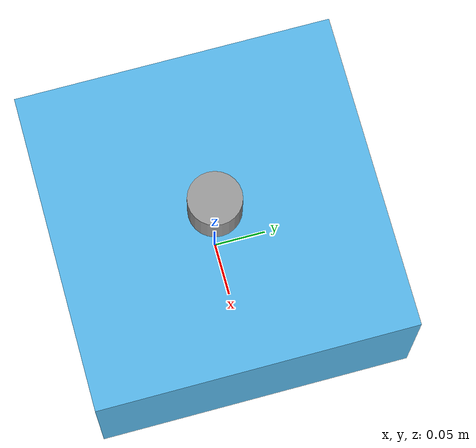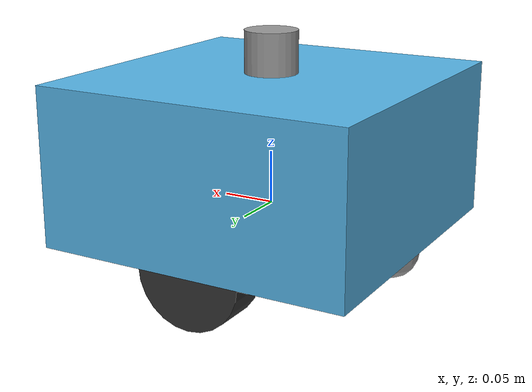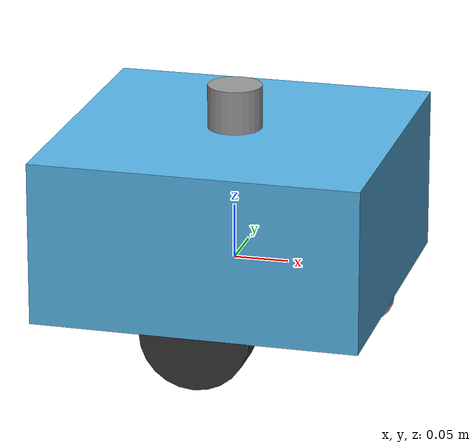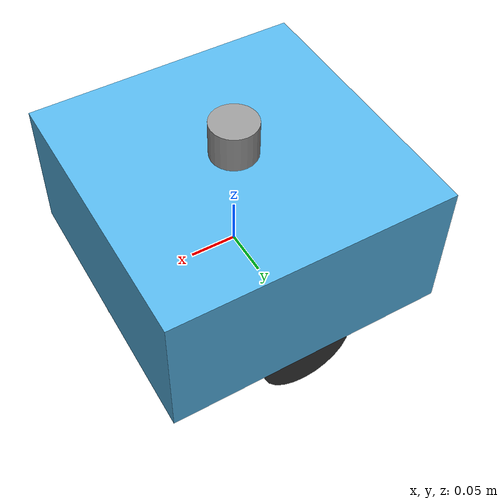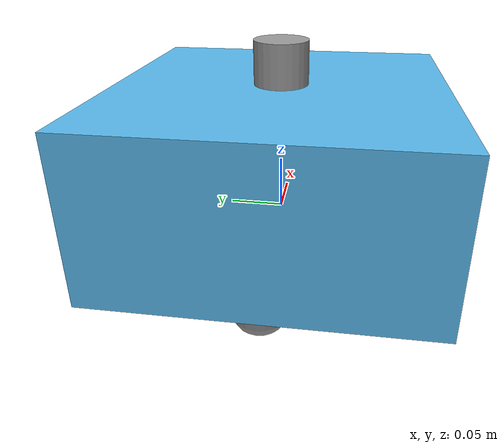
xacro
<?xml version="1.0"?>
<robot name="swarm_robot" xmlns:xacro="http://www.ros.org/wiki/xacro">

  <!-- ═══════════════════════════════════════════════════════════
       Parameters
       ═══════════════════════════════════════════════════════════ -->
  <xacro:arg name="robot_name"       default="robot_0"/>
  <!-- ros_namespace is robot_0, robot_1, ... -->
  <xacro:arg name="ros_namespace"    default="robot_0"/>
  <!-- Absolute path to the per-robot controllers YAML, written by the launch file -->
  <xacro:arg name="controllers_yaml" default=""/>

  <xacro:property name="rname"     value="$(arg robot_name)"/>
  <xacro:property name="ros_ns"    value="$(arg ros_namespace)"/>
  <xacro:property name="ctrl_yaml" value="$(arg controllers_yaml)"/>

  <!-- ═══════════════════════════════════════════════════════════
       Geometry constants
       ═══════════════════════════════════════════════════════════ -->
  <xacro:property name="body_x"        value="0.30"/>
  <xacro:property name="body_y"        value="0.30"/>
  <xacro:property name="body_z"        value="0.15"/>
  <xacro:property name="wheel_radius"  value="0.05"/>
  <xacro:property name="wheel_width"   value="0.04"/>
  <xacro:property name="wheel_sep"     value="0.25"/>
  <xacro:property name="caster_radius" value="0.025"/>

  <!-- Robot base rides at wheel_radius above the ground plane -->
  <xacro:property name="base_z_offset" value="${wheel_radius}"/>

  <!-- ═══════════════════════════════════════════════════════════
       LINKS
       ═══════════════════════════════════════════════════════════ -->

  <!-- Zero-inertia ground-plane anchor -->
  <link name="${rname}/base_footprint"/>

  <!-- Robot body -->
<link name="${rname}/base_link">
  <visual>
    <origin xyz="0 0 0" rpy="0 0 0"/>
    <geometry>
      <box size="${body_x} ${body_y} ${body_z}"/>
    </geometry>
  </visual>

  <inertial>
    <mass value="5.0"/>
    <inertia
      ixx="${5.0/12.0*(body_y*body_y + body_z*body_z)}"
      ixy="0.0" ixz="0.0"
      iyy="${5.0/12.0*(body_x*body_x + body_z*body_z)}"
      iyz="0.0"
      izz="${5.0/12.0*(body_x*body_x + body_y*body_y)}"/>
  </inertial>
</link>

  <!-- Left drive wheel -->
  <link name="${rname}/left_wheel">
    <visual>
      <origin xyz="0 0 0" rpy="${pi/2} 0 0"/>
      <geometry>
        <cylinder radius="${wheel_radius}" length="${wheel_width}"/>
      </geometry>
      <material name="dark_grey">
        <color rgba="0.2 0.2 0.2 1.0"/>
      </material>
    </visual>
    <collision>
      <origin xyz="0 0 0" rpy="${pi/2} 0 0"/>
      <geometry>
        <cylinder radius="${wheel_radius}" length="${wheel_width}"/>
      </geometry>
    </collision>
    <inertial>
      <mass value="0.5"/>
      <inertia
        ixx="${0.5/12.0*(3.0*wheel_radius*wheel_radius + wheel_width*wheel_width)}"
        ixy="0.0" ixz="0.0"
        iyy="${0.5/12.0*(3.0*wheel_radius*wheel_radius + wheel_width*wheel_width)}"
        iyz="0.0"
        izz="${0.5/2.0*wheel_radius*wheel_radius}"/>
    </inertial>
  </link>

  <!-- Right drive wheel -->
  <link name="${rname}/right_wheel">
    <visual>
      <origin xyz="0 0 0" rpy="${pi/2} 0 0"/>
      <geometry>
        <cylinder radius="${wheel_radius}" length="${wheel_width}"/>
      </geometry>
      <material name="dark_grey">
        <color rgba="0.2 0.2 0.2 1.0"/>
      </material>
    </visual>
    <collision>
      <origin xyz="0 0 0" rpy="${pi/2} 0 0"/>
      <geometry>
        <cylinder radius="${wheel_radius}" length="${wheel_width}"/>
      </geometry>
    </collision>
    <inertial>
      <mass value="0.5"/>
      <inertia
        ixx="${0.5/12.0*(3.0*wheel_radius*wheel_radius + wheel_width*wheel_width)}"
        ixy="0.0" ixz="0.0"
        iyy="${0.5/12.0*(3.0*wheel_radius*wheel_radius + wheel_width*wheel_width)}"
        iyz="0.0"
        izz="${0.5/2.0*wheel_radius*wheel_radius}"/>
    </inertial>
  </link>

  <!-- Passive caster (front, sphere, zero friction) -->
  <link name="${rname}/caster_wheel_one">
    <visual>
      <origin xyz="0 0 0" rpy="0 0 0"/>
      <geometry>
        <sphere radius="${caster_radius}"/>
      </geometry>
      <material name="light_grey">
        <color rgba="0.6 0.6 0.6 1.0"/>
      </material>
    </visual>
    <collision>
      <origin xyz="0 0 0" rpy="0 0 0"/>
      <geometry>
        <sphere radius="${caster_radius}"/>
      </geometry>
    </collision>
    <inertial>
      <mass value="0.1"/>
      <inertia
        ixx="${2.0/5.0*0.1*caster_radius*caster_radius}"
        ixy="0.0" ixz="0.0"
        iyy="${2.0/5.0*0.1*caster_radius*caster_radius}"
        iyz="0.0"
        izz="${2.0/5.0*0.1*caster_radius*caster_radius}"/>
    </inertial>
  </link>

  <!-- Passive caster (front, sphere, zero friction) -->
  <link name="${rname}/caster_wheel_two">
    <visual>
      <origin xyz="0 0 0" rpy="0 0 0"/>
      <geometry>
        <sphere radius="${caster_radius}"/>
      </geometry>
      <material name="light_grey">
        <color rgba="0.6 0.6 0.6 1.0"/>
      </material>
    </visual>
    <collision>
      <origin xyz="0 0 0" rpy="0 0 0"/>
      <geometry>
        <sphere radius="${caster_radius}"/>
      </geometry>
    </collision>
    <inertial>
      <mass value="0.1"/>
      <inertia
        ixx="${2.0/5.0*0.1*caster_radius*caster_radius}"
        ixy="0.0" ixz="0.0"
        iyy="${2.0/5.0*0.1*caster_radius*caster_radius}"
        iyz="0.0"
        izz="${2.0/5.0*0.1*caster_radius*caster_radius}"/>
    </inertial>
  </link>

  <!-- LiDAR sensor mount (top of body) -->
  <link name="${rname}/lidar_link">
    <visual>
      <origin xyz="0 0 0" rpy="0 0 0"/>
      <geometry>
        <cylinder radius="0.025" length="0.04"/>
      </geometry>
      <material name="light_grey">
        <color rgba="0.6 0.6 0.6 1.0"/>
      </material>
    </visual>
    <inertial>
      <mass value="0.05"/>
      <inertia ixx="1e-5" ixy="0.0" ixz="0.0"
               iyy="1e-5" iyz="0.0" izz="1e-5"/>
    </inertial>
  </link>

  <!-- IMU (at body centre, massless) -->
  <link name="${rname}/imu_link">
    <inertial>
      <mass value="0.01"/>
      <inertia ixx="1e-6" ixy="0.0" ixz="0.0"
               iyy="1e-6" iyz="0.0" izz="1e-6"/>
    </inertial>
  </link>

  <!-- ═══════════════════════════════════════════════════════════
       JOINTS
       ═══════════════════════════════════════════════════════════ -->

  <!-- Footprint - body (lift to wheel height) -->
  <joint name="${rname}/base_joint" type="fixed">
    <parent link="${rname}/base_footprint"/>
    <child  link="${rname}/base_link"/>
    <origin xyz="0 0 ${base_z_offset}" rpy="0 0 0"/>
  </joint>

  <!-- Left drive wheel: positioned at +y side, rotates around Y axis -->
  <joint name="${rname}/left_wheel_joint" type="continuous">
    <parent link="${rname}/base_link"/>
    <child  link="${rname}/left_wheel"/>
    <origin xyz="0 ${wheel_sep/2} ${-body_z/2}" rpy="0 0 0"/>
    <axis xyz="0 1 0"/>
    <dynamics damping="0.1" friction="0.0"/>
  </joint>

  <!-- Right drive wheel: positioned at -y side -->
  <joint name="${rname}/right_wheel_joint" type="continuous">
    <parent link="${rname}/base_link"/>
    <child  link="${rname}/right_wheel"/>
    <origin xyz="0 ${-wheel_sep/2} ${-body_z/2}" rpy="0 0 0"/>
    <axis xyz="0 1 0"/>
    <dynamics damping="0.1" friction="0.0"/>
  </joint>

  <!-- Caster: front of base, hangs down to ground level -->
  <joint name="${rname}/caster_joint_one" type="fixed">
    <parent link="${rname}/base_link"/>
    <child  link="${rname}/caster_wheel_one"/>
    <origin xyz="${body_x/2 - caster_radius} 0 ${-body_z/2}" rpy="0 0 0"/>
  </joint>

  <!-- Caster: bottom of base, hangs down to ground level -->
  <joint name="${rname}/caster_joint_two" type="fixed">
    <parent link="${rname}/base_link"/>
    <child  link="${rname}/caster_wheel_two"/>
    <origin xyz="-${body_x/2 - caster_radius} 0 ${-body_z/2}" rpy="0 0 0"/>
  </joint>

  <!-- LiDAR: on top of body -->
  <joint name="${rname}/lidar_joint" type="fixed">
    <parent link="${rname}/base_link"/>
    <child  link="${rname}/lidar_link"/>
    <origin xyz="0 0 ${body_z/2 + 0.02}" rpy="0 0 0"/>
  </joint>

  <!-- IMU: at body centre -->
  <joint name="${rname}/imu_joint" type="fixed">
    <parent link="${rname}/base_link"/>
    <child  link="${rname}/imu_link"/>
    <origin xyz="0 0 0" rpy="0 0 0"/>
  </joint>

  <!-- ═══════════════════════════════════════════════════════════
       GAZEBO — Ignition Fortress tags
       ═══════════════════════════════════════════════════════════ -->

  <!-- Body colour -->
  <gazebo reference="${rname}/base_link">
    <material>
      <diffuse>0.2 0.4 0.8 1</diffuse>
      <ambient>0.2 0.4 0.8 1</ambient>
      <specular>0.1 0.1 0.1 1</specular>
    </material>
  </gazebo>

  <!-- Drive wheels: high traction -->
  <gazebo reference="${rname}/left_wheel">
    <mu1>1.0</mu1>
    <mu2>1.0</mu2>
    <kp>1e6</kp>
    <kd>100.0</kd>
  </gazebo>
  <gazebo reference="${rname}/right_wheel">
    <mu1>1.0</mu1>
    <mu2>1.0</mu2>
    <kp>1e6</kp>
    <kd>100.0</kd>
  </gazebo>

  <!-- Caster: zero friction so it slides passively -->
  <gazebo reference="${rname}/caster_wheel_one">
    <mu1>0.0</mu1>
    <mu2>0.0</mu2>
  </gazebo>

  <!-- Caster: zero friction so it slides passively -->
  <gazebo reference="${rname}/caster_wheel_two">
    <mu1>0.0</mu1>
    <mu2>0.0</mu2>
  </gazebo>

  <!-- ── 2D LiDAR sensor ───────────────────────────────────── -->
  <!-- Publishes to Ignition topic /${rname}/scan_raw          -->
  <!-- Bridged to ROS2 /robot/N/scan in the launch file        -->
  <gazebo reference="${rname}/lidar_link">
    <sensor name="${rname}_lidar" type="gpu_lidar">
      <pose>0 0 0 0 0 0</pose>
      <always_on>true</always_on>
      <visualize>false</visualize>
      <update_rate>10</update_rate>
      <ray>
        <scan>
          <horizontal>
            <samples>181</samples>
            <resolution>1</resolution>
            <min_angle>-3.14159265358979</min_angle>
            <max_angle>3.14159265358979</max_angle>
          </horizontal>
        </scan>
        <range>
          <min>0.10</min>
          <max>10.0</max>
          <resolution>0.01</resolution>
        </range>
        <noise>
          <type>gaussian</type>
          <mean>0.0</mean>
          <stddev>0.01</stddev>
        </noise>
      </ray>
      <topic>/${rname}/scan_raw</topic>
      <ignition_frame_id>${rname}/lidar_link</ignition_frame_id>
    </sensor>
  </gazebo>

  <!-- ── IMU sensor ───────────────────────────────────────── -->
  <!-- Publishes to Ignition topic /${rname}/imu_raw           -->
  <!-- Bridged to ROS2 /robot/N/imu in the launch file         -->
  <gazebo reference="${rname}/imu_link">
    <sensor name="${rname}_imu" type="imu">
      <always_on>true</always_on>
      <update_rate>100</update_rate>
      <visualize>false</visualize>
      <topic>/${rname}/imu_raw</topic>
      <ignition_frame_id>${rname}/imu_link</ignition_frame_id>
      <imu>
        <angular_velocity>
          <x><noise type="gaussian"><mean>0</mean><stddev>0.009</stddev></noise></x>
          <y><noise type="gaussian"><mean>0</mean><stddev>0.009</stddev></noise></y>
          <z><noise type="gaussian"><mean>0</mean><stddev>0.009</stddev></noise></z>
        </angular_velocity>
        <linear_acceleration>
          <x><noise type="gaussian"><mean>0</mean><stddev>0.021</stddev></noise></x>
          <y><noise type="gaussian"><mean>0</mean><stddev>0.021</stddev></noise></y>
          <z><noise type="gaussian"><mean>0</mean><stddev>0.021</stddev></noise></z>
        </linear_acceleration>
      </imu>
    </sensor>
  </gazebo>

  <!-- ── ros2_control hardware interface ──────────────────── -->
  <!-- Joint names MUST match the URDF joint names exactly     -->
  <!-- (including the robot_name/ prefix)                      -->
  <ros2_control name="${rname}_system" type="system">
    <hardware>
      <plugin>gz_ros2_control/GazeboSimSystem</plugin>
    </hardware>
    <joint name="${rname}/left_wheel_joint">
      <command_interface name="velocity"/>
      <state_interface name="position"/>
      <state_interface name="velocity"/>
    </joint>
    <joint name="${rname}/right_wheel_joint">
      <command_interface name="velocity"/>
      <state_interface name="position"/>
      <state_interface name="velocity"/>
    </joint>
  </ros2_control>

  <gazebo>
    <plugin filename="gz_ros2_control-system"
            name="gz_ros2_control::GazeboSimROS2ControlPlugin">
      <ros>
        <namespace>${ros_ns}</namespace>
      </ros>
      <parameters>${ctrl_yaml}</parameters>
      <controller_manager_name>controller_manager</controller_manager_name>
    </plugin>
  </gazebo>

</robot>
